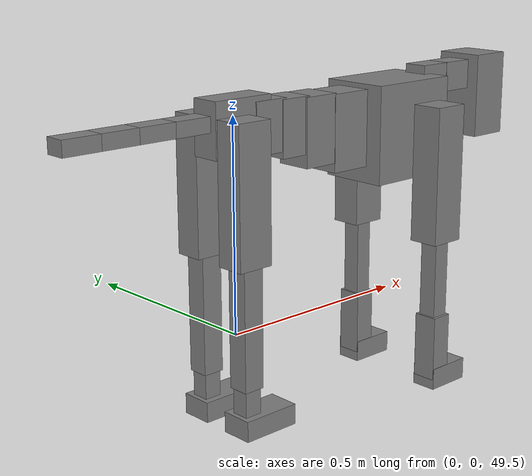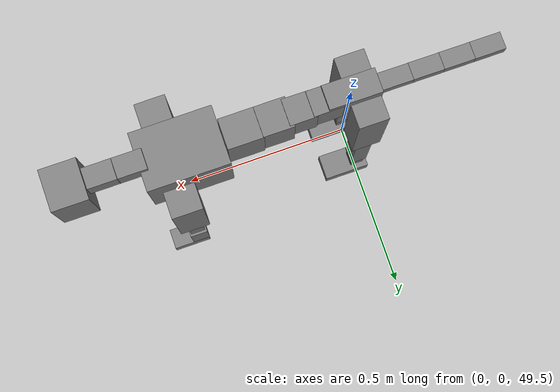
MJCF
<mujoco model="dog">

    <default>
        <joint armature="0.02" stiffness="1" damping="0.2" limited="true"/>
        <geom condim="3" friction="1 0.05 0.05" margin="0.01"/>
        <motor ctrllimited="true" ctrlrange="-1.0 1.0" forcelimited="true" gear="50"/>
    </default>

    <compiler inertiafromgeom="true" angle="radian"/>

    <option timestep="0.016" iterations="50" tolerance="1e-10" solver="Newton" jacobian="dense" cone="pyramidal"/>

    <size nconmax="20000" njmax="60000" nstack="5000000"/>
    <visual>
        <map force="0.1" zfar="30"/>
        <rgba haze="0.15 0.25 0.35 1"/>
        <quality shadowsize="2048"/>
        <global offwidth="800" offheight="800"/>
    </visual>

    <asset>
        <texture type="skybox" builtin="gradient" rgb1="0.3 0.5 0.7" rgb2="0 0 0" width="512" height="512"/>
        <texture name="texplane" type="2d" builtin="checker" rgb1=".2 .3 .4" rgb2=".1 0.15 0.2" width="512" height="512"
                 mark="cross" markrgb=".8 .8 .8"/>
        <texture name="texgeom" type="cube" builtin="flat" mark="cross" width="127" height="1278" rgb1="0.8 0.6 0.4"
                 rgb2="0.8 0.6 0.4" markrgb="1 1 1" random="0.01"/>

        <material name="matplane" reflectance="0.3" texture="texplane" texrepeat="1 1" texuniform="true"/>
        <material name="matgeom" texture="texgeom" texuniform="true" rgba="0.8 0.6 .4 1"/>
    </asset>

    <worldbody>
        <geom name="floor" pos="0 0 0" size="0 0 .25" type="plane" material="matplane" condim="3"/>

        <light directional="false" diffuse=".2 .2 .2" specular="0 0 0" pos="0 0 5" dir="0 0 -1" castshadow="false"/>
        <light mode="targetbodycom" target="torso" directional="false" diffuse=".8 .8 .8" specular="0.3 0.3 0.3"
               pos="0 0 4.0" dir="0 0 -1"/>

        <body name="root" pos="0 0 50">
            <freejoint name="root_1"/>
            <geom type="box" pos="0 0 -0.02" size="0.0774  0.0358  0.063" density="2030"/>

            <body name="spine1" pos="0.054 0 0">
                <joint name="spine1_y" axis="0 1 0" range="0 0.7" limited="true"/>
                <geom type="box" pos="0.02375 0 -0.03" size="0.04375  0.0375  0.05985" density="2030"/>

                <body name="spine2" pos="0.0612 0 0">
                    <joint name="spine2_y" axis="0 1 0" range="-0.15 0.15" limited="true"/>
                    <geom type="box" pos="0.03555  0  -0.04" size="0.04055  0.039  0.06615" density="2030"/>

                    <body name="spine3" pos="0.0730 0 0">
                        <joint name="spine3_y" axis="0 1 0" range="-0.15 0.15" limited="true"/>
                        <geom type="box" pos="0.03555  0  -0.057" size="0.04555  0.0445  0.081" density="2030"/>

                        <body name="spine4" pos="0.0780 0 0">
                            <joint name="spine4_y" axis="0 1 0" range="-0.15 0.15" limited="true"/>
                            <geom type="box" pos="0.05265  0  -0.07" size="0.05265  0.045  0.09135" density="2030"/>

                            <body name="torso" pos="0.1082 0 0">
                                <joint name="torso_y" axis="0 1 0" range="-0.15 0.15" limited="true"/>
                                <geom type="box" pos="0.11925  0  -0.085" size="0.11925  0.085  0.11745"
                                      density="2030"/>

                                <body name="neck1" pos="0.2160  0   0.0180">
                                    <joint name="neck1_y" axis="0 1 0" range="-1.2  -1" limited="true"/>
                                    <geom type="box" pos="0.0423  0  0" size="0.0423  0.03  0.036" density="2325"/>

                                    <body name="neck2" pos="0.0853  0  0">
                                        <joint name="neck2_y" axis="0 1 0" range="0.1  0" limited="true"/>
                                        <geom type="box" pos="0.0423  0  0" size="0.0423  0.03  0.036" density="2325"/>

                                        <body name="head" pos="0.0853  0  0">
                                            <joint name="head_y" axis="0 1 0" range="-0.3  -0.2" limited="true"/>
                                            <geom type="box" pos="0.0531  0  -0.055" size="0.0531  0.06  0.1044"
                                                  density="4030"/>

                                        </body>
                                    </body>
                                </body>

                                <body name="front_shoulder" pos="0.156  0   -0.0480">
                                    <joint name="front_shoulder_y" axis="0 1 0" range="-1 1.5" limited="true"/>
                                    <geom type="box" pos="0 0.13 -0.1403" size="0.0450  0.0384  0.1670" density="1158"/>
                                    <geom type="box" pos="0 -0.13 -0.1403" size="0.0450  0.0384  0.1670"
                                          density="1158"/>

                                    <body name="front_elbow" pos="0  0  -0.2807">
                                        <joint name="front_elbow_y" axis="0 1 0" range="-2 0" limited="true"/>
                                        <geom type="box" pos="0 0.13 -0.1154" size="0.0221  0.0226  0.1154"
                                              density="1081"/>
                                        <geom type="box" pos="0 -0.13 -0.1154" size="0.0221  0.0226  0.1154"
                                              density="1081"/>

                                        <body name="front_wrist" pos="0  0  -0.2308">
                                            <joint name="front_wrist_y" axis="0 1 0" range="-0.2 0" limited="true"/>
                                            <geom type="box" pos="0 0.13 -0.0678" size="0.0271  0.0302  0.0809"
                                                  density="1664"/>
                                            <geom type="box" pos="0 -0.13 -0.0678" size="0.0271  0.0302  0.0809"
                                                  density="1664"/>

                                            <body name="front_finger_end" pos="0  0  -0.1356">
                                                <joint name="front_finger_y" axis="0 1 0" range="-0.4 1"
                                                       limited="true"/>
                                                <geom type="box" pos="0.0317  0.13  -0.0115"
                                                      size="0.0581  0.0317  0.0265" density="1515"/>
                                                <geom type="box" pos="0.0317  -0.13  -0.0115"
                                                      size="0.0581  0.0317  0.0265" density="1515"/>

                                            </body>

                                        </body>
                                    </body>
                                </body>

                            </body>
                        </body>
                    </body>
                </body>
            </body>

            <body name="back_hip" pos="-0.03 0 -0.018">
                <joint name="back_hip_y" axis="0 1 0" range="-1.5 0.3" limited="true"/>
                <geom type="box" pos="0 0.07 -0.1373" size="0.0442  0.0346  0.1601" density="1154"/>
                <geom type="box" pos="0 -0.07 -0.1373" size="0.0442  0.0346  0.1601" density="1154"/>

                <body name="back_knee" pos="0  0  -0.2746">
                    <joint name="back_knee_y" axis="0 1 0" range="0 2.8" limited="true"/>
                    <geom type="box" pos="0 0.07 -0.1442" size="0.0259  0.0255  0.1598" density="1227"/>
                    <geom type="box" pos="0 -0.07 -0.1442" size="0.0259  0.0255  0.1598" density="1227"/>

                    <body name="back_ankle" pos="0  0  -0.2885">
                        <joint name="back_ankle_y" axis="0 1 0" range="-2.2 0" limited="true"/>
                        <geom type="box" pos="0 0.07 -0.0456" size="0.0213  0.0213  0.0568" density="1284"/>
                        <geom type="box" pos="0 -0.07 -0.0456" size="0.0213  0.0213  0.0568" density="1284"/>

                        <body name="back_toe_end" pos="0  0  -0.0912">
                            <joint name="back_toe_y" axis="0 1 0" range="-0.4 1" limited="true"/>
                            <geom type="box" pos="0.0389  0.07  -0.0093" size="0.0714  0.0389  0.0243" density="1515"/>
                            <geom type="box" pos="0.0389  -0.07  -0.0093" size="0.0714  0.0389  0.0243" density="1515"/>

                        </body>
                    </body>
                </body>
            </body>

            <body name="tail1" pos="-0.074 0 -0.006">
                <joint name="tail1_y" axis="0 1 0" range="-0.2 0.2" limited="true"/>
                <geom type="box" pos="-0.0536  0  0" size="0.045  0.025  0.0175" density="1587"/>

                <body name="tail2" pos="-0.09 0 0">
                    <joint name="tail2_y" axis="0 1 0" range="-0.2 0.2" limited="true"/>
                    <geom type="box" pos="-0.0536  0  0" size="0.045  0.025  0.0175" density="1587"/>

                    <body name="tail3" pos="-0.09 0 0">
                        <joint name="tail3_y" axis="0 1 0" range="-0.2 0.2" limited="true"/>
                        <geom type="box" pos="-0.0536  0  0" size="0.045  0.025  0.0175" density="1587"/>

                        <body name="tail4" pos="-0.09 0 0">
                            <joint name="tail4_y" axis="0 1 0" range="-0.2 0.2" limited="true"/>
                            <geom type="box" pos="-0.0536  0  0" size="0.045  0.025  0.0175" density="1587"/>

                        </body>
                    </body>
                </body>
            </body>
        </body>
    </worldbody>

    <actuator>
        <motor joint="spine1_y" forcerange="-150 150     "/>
        <motor joint="spine2_y" forcerange="-150 150     "/>
        <motor joint="spine3_y" forcerange="-150 150     "/>
        <motor joint="spine4_y" forcerange="-150 150     "/>
        <motor joint="torso_y" forcerange="-150 150     "/>
        <motor joint="neck1_y" forcerange="-100 100       "/>
        <motor joint="neck2_y" forcerange="-100 100       "/>
        <motor joint="head_y" forcerange="-150 150       "/>
        <motor joint="front_shoulder_y" forcerange="-162.11 194.18"/>
        <motor joint="front_elbow_y" forcerange="-106.98 157.19"/>
        <motor joint="front_wrist_y" forcerange="-119.97 121.31"/>
        <motor joint="front_finger_y" forcerange="-79.63 49.53"/>
        <motor joint="back_hip_y" forcerange="-302.20 359.62"/>
        <motor joint="back_knee_y" forcerange="-310.26 260.66"/>
        <motor joint="back_angle_y" forcerange="-173.24 67.57"/>
        <motor joint="back_toe_y" forcerange="-123.22 108.15"/>
        <motor joint="tail1_y" forcerange="-50 50     "/>
        <motor joint="tail2_y" forcerange="-50 50     "/>
        <motor joint="tail3_y" forcerange="-50 50     "/>
        <motor joint="tail4_y" forcerange="-50 50     "/>
    </actuator>
</mujoco>
